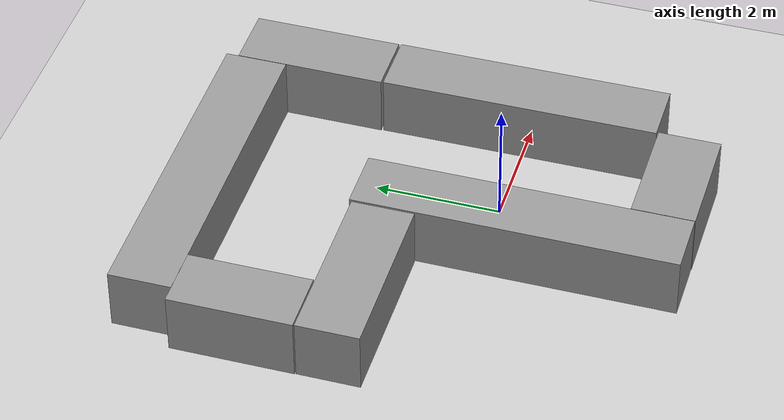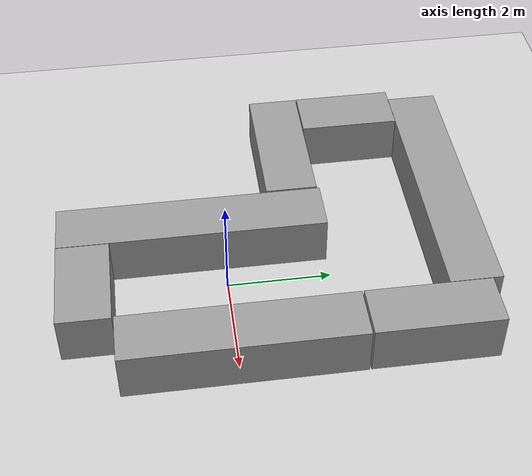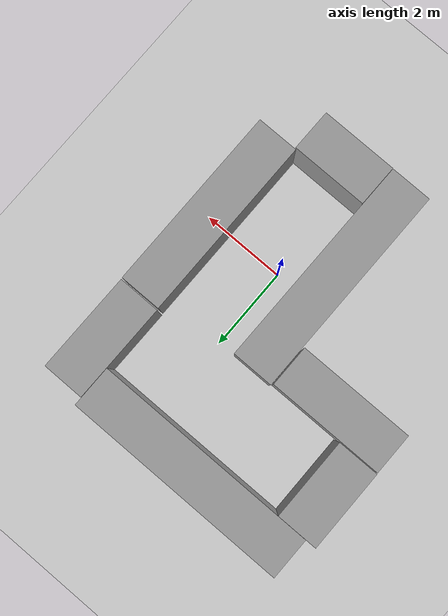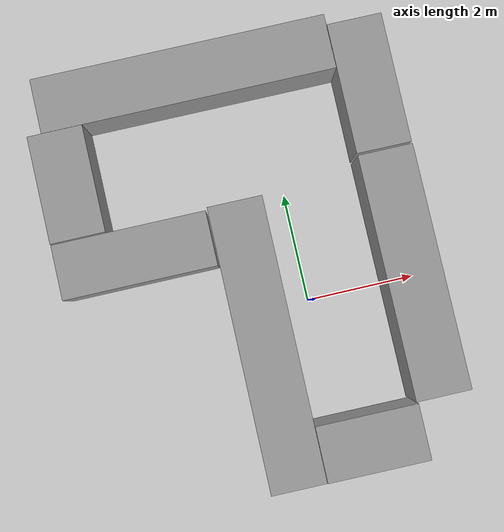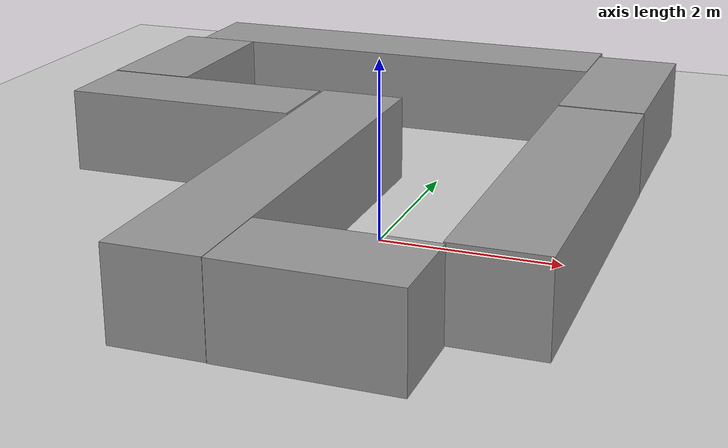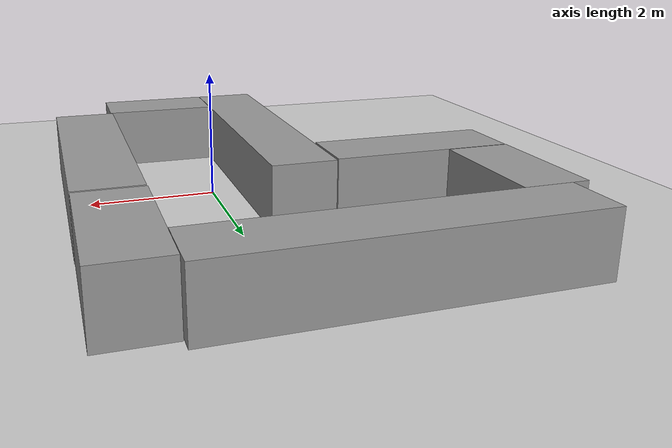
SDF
<sdf version="1.6">
 <world name="default">
  <light name="sun" type="directional">
   <pose>0 0 10 0 -0 0</pose>
   <diffuse>0.8 0.8 0.8 1</diffuse>
   <specular>0.2 0.2 0.2 1</specular>
   <attenuation>
    <range>1000</range>
    <constant>0.9</constant>
    <linear>0.01</linear>
    <quadratic>0.001</quadratic>
   </attenuation>
   <direction>-0.5 0.1 -0.9</direction>
  </light>
  <model name="ground_plane">
   <static>1</static>
   <link name="link">
    <collision name="collision">
     <geometry><plane><normal>0 0 1</normal><size>100 100</size></plane></geometry>
     <surface>
      <contact><collide_bitmask>65535</collide_bitmask></contact>
      <friction><ode><mu>100</mu><mu2>50</mu2></ode></friction>
     </surface>
    </collision>
    <visual name="visual">
     <cast_shadows>0</cast_shadows>
     <geometry><plane><normal>0 0 1</normal><size>100 100</size></plane></geometry>
     <material>
      <script><uri>file://media/materials/scripts/gazebo.material</uri><name>Gazebo/Grey</name></script>
     </material>
    </visual>
   </link>
  </model>
  <gravity>0 0 -9.8</gravity>
  <magnetic_field>6e-06 2.3e-05 -4.2e-05</magnetic_field>
  <atmosphere type="adiabatic"/>
  <physics name="default_physics" default="0" type="ode">
   <max_step_size>0.001</max_step_size>
   <real_time_factor>1</real_time_factor>
   <real_time_update_rate>1000</real_time_update_rate>
  </physics>
  <scene><ambient>0.4 0.4 0.4 1</ambient><background>0.7 0.7 0.7 1</background><shadows>1</shadows></scene>
  <audio><device>default</device></audio>
  <spherical_coordinates>
   <surface_model>EARTH_WGS84</surface_model>
   <latitude_deg>0</latitude_deg>
   <longitude_deg>0</longitude_deg>
   <elevation>0</elevation>
   <heading_deg>0</heading_deg>
  </spherical_coordinates>
  <model name="unit_box">
   <pose>1.87451 0.077421 0.498762 -0.000557 0 -3e-06</pose>
   <link name="link">
    <inertial>
     <mass>1</mass>
     <inertia>
      <ixx>0.166667</ixx>
      <ixy>0</ixy>
      <ixz>0</ixz>
      <iyy>0.166667</iyy>
      <iyz>0</iyz>
      <izz>0.166667</izz>
     </inertia>
    </inertial>
    <collision name="collision"><geometry><box><size>1 4.45029 1</size></box></geometry></collision>
    <visual name="visual">
     <geometry><box><size>1 4.45029 1</size></box></geometry>
     <material>
      <script><name>Gazebo/Grey</name><uri>file://media/materials/scripts/gazebo.material</uri></script>
     </material>
    </visual>
   </link>
  </model>
  <model name="unit_box_0">
   <pose>0.480539 -2.67251 0.499995 -5e-06 2e-06 -0.003427</pose>
   <link name="link">
    <inertial>
     <mass>1</mass>
     <inertia>
      <ixx>0.166667</ixx>
      <ixy>0</ixy>
      <ixz>0</ixz>
      <iyy>0.166667</iyy>
      <iyz>0</iyz>
      <izz>0.166667</izz>
     </inertia>
    </inertial>
    <collision name="collision"><geometry><box><size>1.85044 1 1</size></box></geometry></collision>
    <visual name="visual">
     <geometry><box><size>1.85044 1 1</size></box></geometry>
     <material>
      <script><name>Gazebo/Grey</name><uri>file://media/materials/scripts/gazebo.material</uri></script>
     </material>
    </visual>
   </link>
  </model>
  <model name="unit_box_1">
   <pose>-0.946842 -0.584582 0.5 0 1e-06 -0.002356</pose>
   <link name="link">
    <inertial>
     <mass>1</mass>
     <inertia>
      <ixx>0.166667</ixx>
      <ixy>0</ixy>
      <ixz>0</ixz>
      <iyy>0.166667</iyy>
      <iyz>0</iyz>
      <izz>0.166667</izz>
     </inertia>
    </inertial>
    <collision name="collision"><geometry><box><size>1 5.15312 1</size></box></geometry></collision>
    <visual name="visual">
     <geometry><box><size>1 5.15312 1</size></box></geometry>
     <material>
      <script><name>Gazebo/Grey</name><uri>file://media/materials/scripts/gazebo.material</uri></script>
     </material>
    </visual>
   </link>
  </model>
  <model name="unit_box_2">
   <pose>1.8714 3.53552 0.494243 2e-05 -0 -0.004076</pose>
   <link name="link">
    <inertial>
     <mass>1</mass>
     <inertia>
      <ixx>0.166667</ixx>
      <ixy>0</ixy>
      <ixz>0</ixz>
      <iyy>0.166667</iyy>
      <iyz>0</iyz>
      <izz>0.166667</izz>
     </inertia>
    </inertial>
    <collision name="collision"><geometry><box><size>1 2.39198 1</size></box></geometry></collision>
    <visual name="visual">
     <geometry><box><size>1 2.39198 1</size></box></geometry>
     <material>
      <script><name>Gazebo/Grey</name><uri>file://media/materials/scripts/gazebo.material</uri></script>
     </material>
    </visual>
   </link>
  </model>
  <model name="unit_box_3">
   <pose>-1.33111 4.43108 0.497002 0 0.001112 -3.8e-05</pose>
   <link name="link">
    <inertial>
     <mass>1</mass>
     <inertia>
      <ixx>0.166667</ixx>
      <ixy>0</ixy>
      <ixz>0</ixz>
      <iyy>0.166667</iyy>
      <iyz>0</iyz>
      <izz>0.166667</izz>
     </inertia>
    </inertial>
    <collision name="collision"><geometry><box><size>5.39539 1 1</size></box></geometry></collision>
    <visual name="visual">
     <geometry><box><size>5.39539 1 1</size></box></geometry>
     <material>
      <script><name>Gazebo/Grey</name><uri>file://media/materials/scripts/gazebo.material</uri></script>
     </material>
    </visual>
   </link>
  </model>
  <model name="unit_box_4">
   <pose>-2.87606 1.44513 0.49988 0 -8.6e-05 0</pose>
   <link name="link">
    <inertial>
     <mass>1</mass>
     <inertia>
      <ixx>0.166667</ixx>
      <ixy>0</ixy>
      <ixz>0</ixz>
      <iyy>0.166667</iyy>
      <iyz>0</iyz>
      <izz>0.166667</izz>
     </inertia>
    </inertial>
    <collision name="collision"><geometry><box><size>2.79901 1 1</size></box></geometry></collision>
    <visual name="visual">
     <geometry><box><size>2.79901 1 1</size></box></geometry>
     <material>
      <script><name>Gazebo/Grey</name><uri>file://media/materials/scripts/gazebo.material</uri></script>
     </material>
    </visual>
   </link>
  </model>
  <model name="unit_box_5">
   <pose>-3.78584 2.94782 0.5 0 -0 0.002011</pose>
   <link name="link">
    <inertial>
     <mass>1</mass>
     <inertia>
      <ixx>0.166667</ixx>
      <ixy>0</ixy>
      <ixz>0</ixz>
      <iyy>0.166667</iyy>
      <iyz>0</iyz>
      <izz>0.166667</izz>
     </inertia>
    </inertial>
    <collision name="collision"><geometry><box><size>1 1.96339 1</size></box></geometry></collision>
    <visual name="visual">
     <geometry><box><size>1 1.96339 1</size></box></geometry>
     <material>
      <script><name>Gazebo/Grey</name><uri>file://media/materials/scripts/gazebo.material</uri></script>
     </material>
    </visual>
   </link>
  </model>
 </world>
</sdf>
